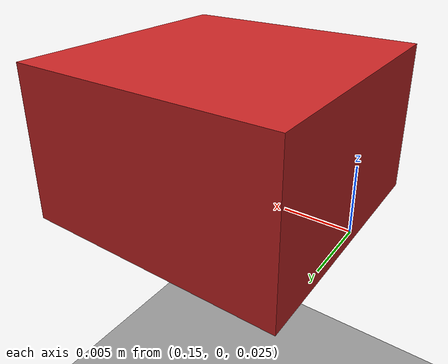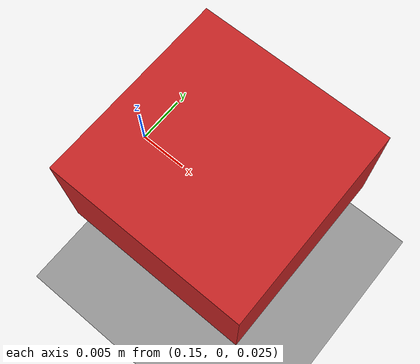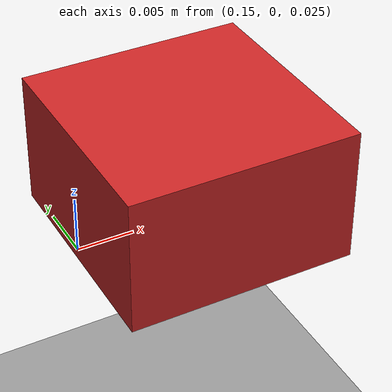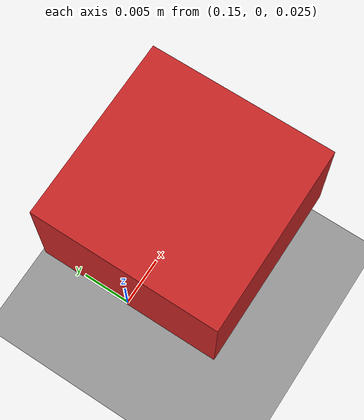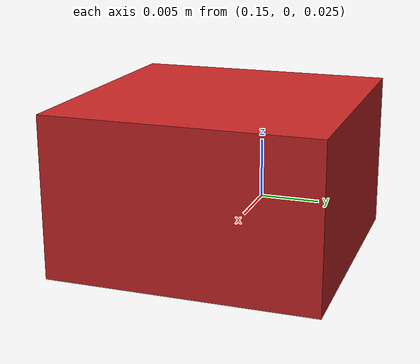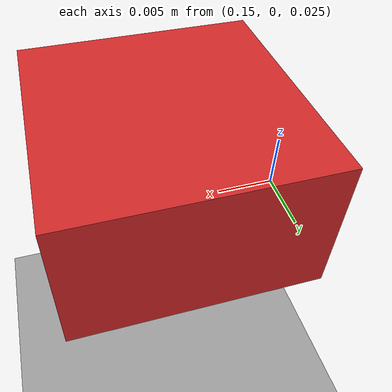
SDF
<?xml version="1.0"?>
<sdf version="1.9">
  <world name="linea_produccion">
    <physics name="1ms" type="ignored">
      <max_step_size>0.001</max_step_size>
      <real_time_factor>1.0</real_time_factor>
    </physics>

    <plugin filename="gz-sim-physics-system" name="gz::sim::systems::Physics"/>
    <plugin filename="gz-sim-user-commands-system" name="gz::sim::systems::UserCommands"/>
    <plugin filename="gz-sim-scene-broadcaster-system" name="gz::sim::systems::SceneBroadcaster"/>

    <light type="directional" name="sun">
      <cast_shadows>true</cast_shadows>
      <pose>0 0 10 0 0 0</pose>
      <diffuse>0.8 0.8 0.8 1</diffuse>
      <specular>0.2 0.2 0.2 1</specular>
      <direction>-0.5 0.1 -0.9</direction>
    </light>

    <model name="ground_plane">
      <static>true</static>
      <link name="link">
        <collision name="collision">
          <geometry><plane><normal>0 0 1</normal><size>10 10</size></plane></geometry>
        </collision>
        <visual name="visual">
          <geometry><plane><normal>0 0 1</normal><size>10 10</size></plane></geometry>
          <material>
            <ambient>0.6 0.6 0.6 1</ambient>
            <diffuse>0.6 0.6 0.6 1</diffuse>
          </material>
        </visual>
      </link>
    </model>

    <model name="pieza">
      <pose>0.160 0.000 0.030 0 0 0</pose>
      <link name="cuerpo">
        <inertial>
          <mass>0.0200</mass>
          <inertia>
            <ixx>9.067e-07</ixx><iyy>9.067e-07</iyy><izz>1.333e-06</izz>
            <ixy>0</ixy><ixz>0</ixz><iyz>0</iyz>
          </inertia>
        </inertial>
        <collision name="collision">
          <geometry><box><size>0.020 0.020 0.012</size></box></geometry>
          <surface>
            <friction><ode><mu>0.9</mu><mu2>0.9</mu2></ode></friction>
          </surface>
        </collision>
        <visual name="visual">
          <geometry><box><size>0.020 0.020 0.012</size></box></geometry>
          <material>
            <ambient>0.80 0.15 0.15 1</ambient>
            <diffuse>0.80 0.15 0.15 1</diffuse>
          </material>
        </visual>
      </link>
    </model>
  </world>
</sdf>
